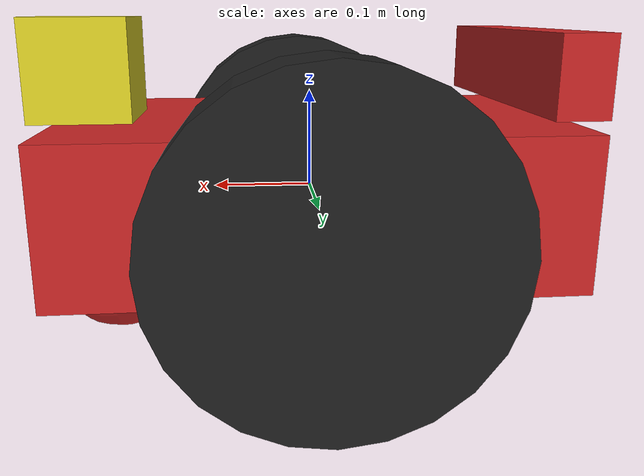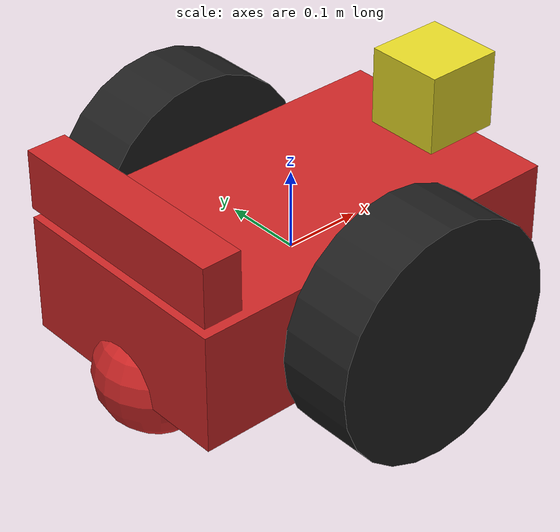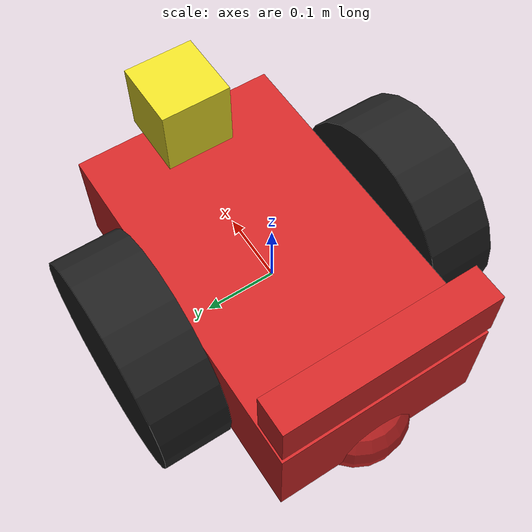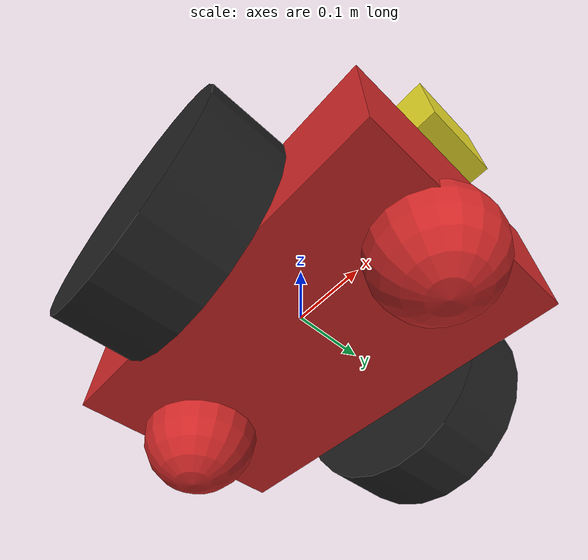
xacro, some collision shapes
<?xml version='1.0'?>

<robot name="my_robot" xmlns:xacro="http://www.ros.org/wiki/xacro">

  <xacro:include filename="$(find my_robot)/urdf/my_robot.gazebo" />

  <xacro:property name="scale" value="1.0" />
  <xacro:property name="bot_l" value="${scale * 0.5}" />
  <xacro:property name="bot_w" value="${scale * 0.3}" />
  <xacro:property name="bot_h" value="${scale * 0.15}" />
  <xacro:property name="chassis_base_x_offset" value="0" />
  <xacro:property name="wheel_l" value="${scale * 0.095}" />
  <xacro:property name="wheel_r" value="${scale * 0.15}" />
  <xacro:property name="castor_r" value="${scale * 0.075}" />
  <xacro:property name="rear_wing_l" value="${scale * 0.05}" />
  <xacro:property name="rear_wing_w" value="${scale * 0.3}" />
  <xacro:property name="rear_wing_h" value="${scale * 0.075}" />

  <link name="robot_footprint"></link>

  <joint name="robot_footprint_joint" type="fixed">
    <origin xyz="0 0 0" rpy="0 0 0" />
    <parent link="robot_footprint"/>
    <child link="chassis" />
  </joint>

  <link name='chassis'>
    <pose>0 0 0.125 0 0 0</pose>

    <inertial>
      <mass value="15.0"/>
      <origin xyz="0.0 0 0" rpy="0 0 0"/>
      <inertia
          ixx="0.1" ixy="0" ixz="0"
          iyy="0.1" iyz="0"
          izz="0.1"
      />
    </inertial>

    <collision name='collision'>
      <origin xyz="0 0 0" rpy=" 0 0 0"/>
      <geometry>
        <box size="${bot_l} ${bot_w} ${bot_h}"/>
      </geometry>
    </collision>

    <visual name='chassis_visual'>
      <origin xyz="0 0 0" rpy=" 0 0 0"/>
      <geometry>
        <box size="${bot_l} ${bot_w} ${bot_h}"/>
      </geometry>
    </visual>

    <collision name='back_caster_collision'>
      <origin xyz="-0.200 0 -0.075" rpy=" 0 0 0"/>
      <geometry>
        <sphere radius="${castor_r - 0.0001}"/>
      </geometry>
    </collision>

    <visual name='back_caster_visual'>
      <origin xyz="-0.200 0 -0.075" rpy=" 0 0 0"/>
      <geometry>
        <sphere radius="${castor_r}"/>
      </geometry>
    </visual>

    <collision name='front_caster_collision'>
      <origin xyz="0.200 0 -0.075" rpy=" 0 0 0"/>
      <geometry>
        <sphere radius="${castor_r - 0.0001}"/>
      </geometry>
    </collision>

    <visual name='front_caster_visual'>
      <origin xyz="0.200 0 -0.075" rpy=" 0 0 0"/>
      <geometry>
        <sphere radius="${castor_r}"/>
      </geometry>
    </visual>

  </link>

  <link name="left_wheel">
    <collision name="left_wheel_collision">
      <origin xyz="0 0 0" rpy="0 1.5707 1.5707"/>
      <geometry>
        <cylinder radius="${wheel_r}" length="${wheel_l}"/>
      </geometry>
    </collision>
    <inertial>
      <mass value="5.0"/>
      <origin xyz="0 0 0" rpy="0 1.5707 1.5707"/>
      <inertia
          ixx="0.1" ixy="0" ixz="0"
          iyy="0.1" iyz="0"
          izz="0.1"
      />
    </inertial>
    <visual name="left_wheel_visual">
      <origin xyz="0 0 0" rpy=" 0 1.5707 1.5707"/>
      <geometry>
        <cylinder radius="${wheel_r}" length="${wheel_l}"/>
      </geometry>
    </visual>
  </link>

  <link name="right_wheel">
    <collision name="right_wheel_collision">
      <origin xyz="0 0 0" rpy="0 1.5707 1.5707"/>
      <geometry>
        <cylinder radius="${wheel_r}" length="${wheel_l}"/>
      </geometry>
    </collision>
    <inertial>
      <mass value="5.0"/>
      <origin xyz="0 0 0" rpy="0 1.5707 1.5707"/>
      <inertia
          ixx="0.1" ixy="0" ixz="0"
          iyy="0.1" iyz="0"
          izz="0.1"
      />
    </inertial>
    <visual name="right_wheel_visual">
      <origin xyz="0 0 0" rpy=" 0 1.5707 1.5707"/>
      <geometry>
        <cylinder radius="${wheel_r}" length="${wheel_l}"/>
      </geometry>
    </visual>
  </link>

  <joint type="continuous" name="left_wheel_hinge">
    <origin xyz="0 0.205 0" rpy="0 0 0"/>
    <child link="left_wheel"/>
    <parent link="chassis"/>
    <axis xyz="0 1 0" rpy="0 0 0"/>
    <limit effort="10000" velocity="1000"/>
    <dynamics damping="0.0" friction="1.0"/>
  </joint>

  <joint type="continuous" name="right_wheel_hinge">
    <origin xyz="0 -0.205 0" rpy="0 0 0"/>
    <child link="right_wheel"/>
    <parent link="chassis"/>
    <axis xyz="0 1 0" rpy="0 0 0"/>
    <limit effort="10000" velocity="1000"/>
    <dynamics damping="0.0" friction="1.0"/>
  </joint>

  <link name="camera">
    <collision name="camera_collision">
      <origin xyz="0 0 0" rpy="0 0 0"/>
      <geometry>
        <box size="0.05 0.05 0.05"/>
      </geometry>
    </collision>
    <inertial>
      <mass value="0.1"/>
      <origin xyz="0.05 0.05 0.05" rpy="0 0 0"/>
      <inertia
          ixx="1e-6" ixy="0" ixz="0"
          iyy="1e-6" iyz="0"
          izz="1e-6"
      />
    </inertial>
    <visual name="camera_visual">
      <origin xyz="0 0 0" rpy="0 0 0"/>
      <geometry>
        <box size="0.05 0.05 0.05"/>
      </geometry>
    </visual>
  </link>

  <joint type="fixed" name="camera_joint">
    <origin xyz="0.2 0 0" rpy="0 0 0"/>
    <child link="camera"/>
    <parent link="chassis"/>
    <axis xyz="0 1 0" rpy="0 0 0"/>
  </joint>

  <joint name="camera_optical_joint" type="fixed">
    <origin xyz="0 0 0" rpy="-1.5707 0 -1.5707"/>
    <parent link="camera"/>
    <child link="camera_link_optical"/>
  </joint>

  <link name="camera_link_optical">
  </link>

  <link name="hokuyo">
    <collision name="hokuyo_collision">
      <origin xyz="0 0 0" rpy="0 0 0"/>
      <geometry>
        <box size="0.1 0.1 0.1"/>
      </geometry>
    </collision>
    <inertial>
      <mass value="1e-5"/>
      <inertia
          ixx="1e-6" ixy="0" ixz="0"
          iyy="1e-6" iyz="0"
          izz="1e-6"
      />
    </inertial>
    <visual name="hokuyo_visual">
      <origin xyz="0 0 0" rpy="0 0 0"/>
      <geometry>
        <mesh filename="package://my_robot/meshes/hokuyo.dae"/>
      </geometry>
    </visual>
  </link>

  <joint type="fixed" name="hokuyo_joint">
    <origin xyz="0.225 0 0.125" rpy="0 0 0"/>
    <child link="hokuyo"/>
    <parent link="chassis"/>
    <axis xyz="0 1 0" rpy="0 0 0"/>
  </joint>

  <joint type="fixed" name="rear_wing_joint">
    <origin xyz="-0.225 0 0.125" rpy="0 0 0"/>
    <child link="rear_wing"/>
    <parent link="chassis"/>
    <axis xyz="0 1 0" rpy="0 0 0"/>
  </joint>

  <link name='rear_wing'>
    <inertial>
      <mass value="0.5"/>
      <origin xyz="0.0 0 0" rpy="0 0 0"/>
      <inertia
          ixx="0.1" ixy="0" ixz="0"
          iyy="0.1" iyz="0"
          izz="0.1"
      />
    </inertial>
    <collision name='collision'>
      <origin xyz="0 0 0" rpy=" 0 0 0"/>
      <geometry>
        <box size="${rear_wing_l} ${rear_wing_w} ${rear_wing_h}"/>
      </geometry>
    </collision>
    <visual name='chassis_visual'>
      <origin xyz="0 0 0" rpy=" 0 0 0"/>
      <geometry>
        <box size="${rear_wing_l} ${rear_wing_w} ${rear_wing_h}"/>
      </geometry>
    </visual>
  </link>

  <!-- Defining the colors of my Ferrari -->
  <gazebo reference="left_wheel">
    <material>Gazebo/Black</material>
  </gazebo>
  <gazebo reference="right_wheel">
    <material>Gazebo/Black</material>
  </gazebo>
  <gazebo reference="chassis">
    <material>Gazebo/Red</material>
  </gazebo>
  <gazebo reference="rear_wing">
    <material>Gazebo/Red</material>
  </gazebo>
  <gazebo reference="hokuyo">
    <material>Gazebo/Yellow</material>
  </gazebo>
  <gazebo reference="camera">
    <material>Gazebo/Orange</material>
  </gazebo>

</robot>
